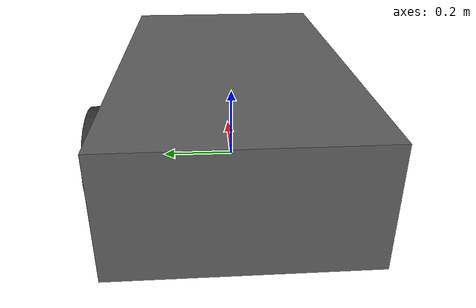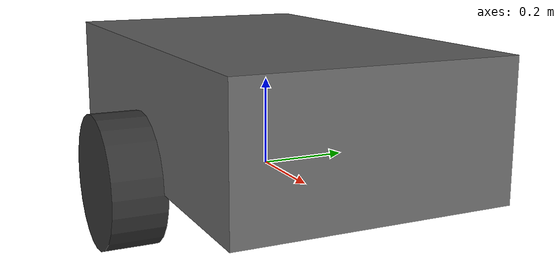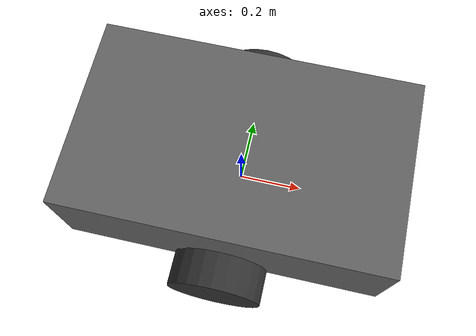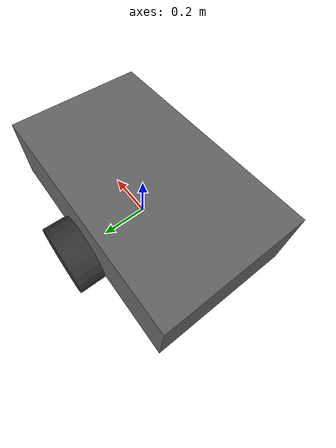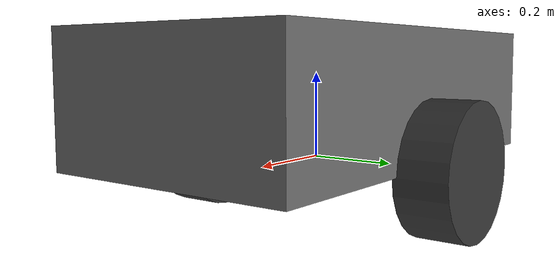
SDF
<?xml version="1.0"?>
<sdf version="1.7">
  <model name="panther_robot">
    <link name="base_link">
      <pose>0 0 0.15 0 0 0</pose>
      <inertial>
        <mass>30.0</mass>
        <inertia>
          <ixx>1.5</ixx>
          <iyy>3.0</iyy>
          <izz>3.5</izz>
        </inertia>
      </inertial>

      <visual name="base_visual">
        <geometry>
          <box>
            <size>1.0 0.6 0.3</size>
          </box>
        </geometry>
        <material>
          <ambient>0.2 0.2 0.2 1</ambient>
          <diffuse>0.4 0.4 0.4 1</diffuse>
        </material>
      </visual>

      <collision name="base_collision">
        <geometry>
          <box>
            <size>1.0 0.6 0.3</size>
          </box>
        </geometry>
        <surface>
          <friction>
            <ode>
              <mu>0.5</mu>
              <mu2>0.5</mu2>
            </ode>
          </friction>
        </surface>
      </collision>
    </link>

    <!-- Left drive wheel -->
    <link name="left_wheel">
      <pose>0.0 0.35 0.0 1.5708 0 0</pose>
      <inertial>
        <mass>2.5</mass>
        <inertia>
          <ixx>0.03</ixx>
          <iyy>0.03</iyy>
          <izz>0.05</izz>
        </inertia>
      </inertial>
      <visual name="wheel_visual">
        <geometry>
          <cylinder>
            <radius>0.15</radius>
            <length>0.12</length>
          </cylinder>
        </geometry>
        <material>
          <ambient>0.1 0.1 0.1 1</ambient>
          <diffuse>0.2 0.2 0.2 1</diffuse>
        </material>
      </visual>
      <collision name="wheel_collision">
        <geometry>
          <cylinder>
            <radius>0.15</radius>
            <length>0.12</length>
          </cylinder>
        </geometry>
        <surface>
          <friction>
            <ode>
              <mu>1.5</mu>
              <mu2>1.5</mu2>
              <slip1>0.0</slip1>
              <slip2>0.0</slip2>
            </ode>
          </friction>
          <contact>
            <ode>
              <kp>1000000.0</kp>
              <kd>100.0</kd>
              <min_depth>0.002</min_depth>
            </ode>
          </contact>
        </surface>
      </collision>
    </link>

    <!-- Right drive wheel -->
    <link name="right_wheel">
      <pose>0.0 -0.35 0.0 1.5708 0 0</pose>
      <inertial>
        <mass>2.5</mass>
        <inertia>
          <ixx>0.03</ixx>
          <iyy>0.03</iyy>
          <izz>0.05</izz>
        </inertia>
      </inertial>
      <visual name="wheel_visual">
        <geometry>
          <cylinder>
            <radius>0.15</radius>
            <length>0.12</length>
          </cylinder>
        </geometry>
        <material>
          <ambient>0.1 0.1 0.1 1</ambient>
          <diffuse>0.2 0.2 0.2 1</diffuse>
        </material>
      </visual>
      <collision name="wheel_collision">
        <geometry>
          <cylinder>
            <radius>0.15</radius>
            <length>0.12</length>
          </cylinder>
        </geometry>
        <surface>
          <friction>
            <ode>
              <mu>1.5</mu>
              <mu2>1.5</mu2>
              <slip1>0.0</slip1>
              <slip2>0.0</slip2>
            </ode>
          </friction>
          <contact>
            <ode>
              <kp>1000000.0</kp>
              <kd>100.0</kd>
              <min_depth>0.002</min_depth>
            </ode>
          </contact>
        </surface>
      </collision>
    </link>

    <!-- Front caster wheel -->
    <link name="front_caster">
      <pose>0.4 0.0 0.05 0 0 0</pose>
      <inertial>
        <mass>0.5</mass>
        <inertia>
          <ixx>0.001</ixx>
          <iyy>0.001</iyy>
          <izz>0.001</izz>
        </inertia>
      </inertial>
      <visual name="caster_visual">
        <geometry>
          <sphere>
            <radius>0.05</radius>
          </sphere>
        </geometry>
        <material>
          <ambient>0.3 0.3 0.3 1</ambient>
          <diffuse>0.5 0.5 0.5 1</diffuse>
        </material>
      </visual>
      <collision name="caster_collision">
        <geometry>
          <sphere>
            <radius>0.05</radius>
          </sphere>
        </geometry>
        <surface>
          <friction>
            <ode>
              <mu>0.1</mu>
              <mu2>0.1</mu2>
              <slip1>1.0</slip1>
              <slip2>1.0</slip2>
            </ode>
          </friction>
        </surface>
      </collision>
    </link>

    <!-- Rear caster wheel -->
    <link name="rear_caster">
      <pose>-0.4 0.0 0.05 0 0 0</pose>
      <inertial>
        <mass>0.5</mass>
        <inertia>
          <ixx>0.001</ixx>
          <iyy>0.001</iyy>
          <izz>0.001</izz>
        </inertia>
      </inertial>
      <visual name="caster_visual">
        <geometry>
          <sphere>
            <radius>0.05</radius>
          </sphere>
        </geometry>
        <material>
          <ambient>0.3 0.3 0.3 1</ambient>
          <diffuse>0.5 0.5 0.5 1</diffuse>
        </material>
      </visual>
      <collision name="caster_collision">
        <geometry>
          <sphere>
            <radius>0.05</radius>
          </sphere>
        </geometry>
        <surface>
          <friction>
            <ode>
              <mu>0.1</mu>
              <mu2>0.1</mu2>
              <slip1>1.0</slip1>
              <slip2>1.0</slip2>
            </ode>
          </friction>
        </surface>
      </collision>
    </link>

    <!-- Drive wheel joints -->
    <joint name="left_wheel_joint" type="revolute">
      <parent>base_link</parent>
      <child>left_wheel</child>
      <axis>
        <xyz>0 1 0</xyz>
        <limit>
          <lower>-1.79769e+308</lower>
          <upper>1.79769e+308</upper>
          <effort>100</effort>
          <velocity>10</velocity>
        </limit>
        <dynamics>
          <damping>0.1</damping>
          <friction>0.1</friction>
        </dynamics>
      </axis>
    </joint>

    <joint name="right_wheel_joint" type="revolute">
      <parent>base_link</parent>
      <child>right_wheel</child>
      <axis>
        <xyz>0 1 0</xyz>
        <limit>
          <lower>-1.79769e+308</lower>
          <upper>1.79769e+308</upper>
          <effort>100</effort>
          <velocity>10</velocity>
        </limit>
        <dynamics>
          <damping>0.1</damping>
          <friction>0.1</friction>
        </dynamics>
      </axis>
    </joint>

    <!-- Caster joints -->
    <joint name="front_caster_joint" type="ball">
      <parent>base_link</parent>
      <child>front_caster</child>
    </joint>

    <joint name="rear_caster_joint" type="ball">
      <parent>base_link</parent>
      <child>rear_caster</child>
    </joint>

    <!-- Improved differential drive plugin -->
    <plugin filename="gz-sim-diff-drive-system" name="gz::sim::systems::DiffDrive">
      <left_joint>left_wheel_joint</left_joint>
      <right_joint>right_wheel_joint</right_joint>
      <wheel_separation>0.7</wheel_separation>
      <wheel_radius>0.15</wheel_radius>
      <odom_publish_frequency>50</odom_publish_frequency>
      <max_linear_velocity>1.5</max_linear_velocity>
      <min_linear_velocity>-1.5</min_linear_velocity>
      <max_angular_velocity>2.0</max_angular_velocity>
      <min_angular_velocity>-2.0</min_angular_velocity>
      <max_wheel_acceleration>5.0</max_wheel_acceleration>
      <topic>cmd_vel</topic>
      <odom_topic>odom</odom_topic>
      <tf_topic>tf</tf_topic>
      <frame_id>odom</frame_id>
      <child_frame_id>base_link</child_frame_id>
    </plugin>

    <!-- Joint state publisher -->
    <plugin filename="gz-sim-joint-state-publisher-system" name="gz::sim::systems::JointStatePublisher">
      <topic>joint_states</topic>
    </plugin>

  </model>
</sdf>
